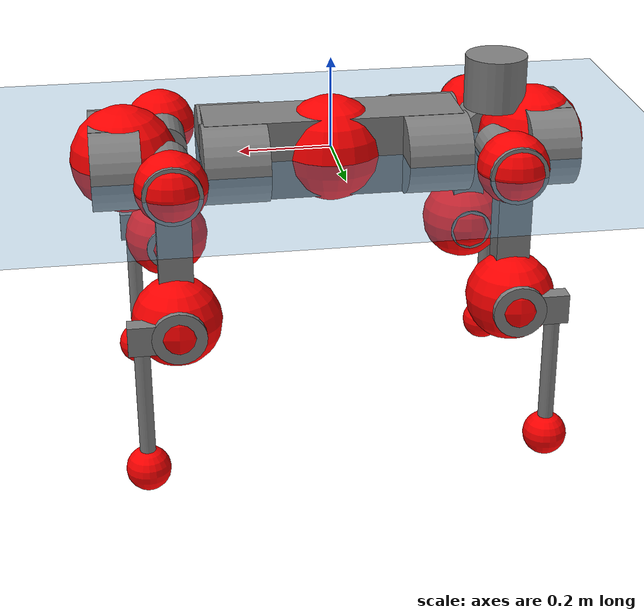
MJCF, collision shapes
<mujoco model="anymal_c">
  <compiler angle="radian" assetdir="assets" balanceinertia="true" inertiafromgeom="false"/>

  <option timestep="0.005" density="1.2" viscosity="2e-05"/>

  <size nkey="1"/>

  <visual>
    <quality shadowsize="8192"/>
    <map shadowclip="0.5"/>
  </visual>

  <default>
    <default class="/">
      <material specular="0" shininess="0.25"/>
      <geom contype="0" conaffinity="0" group="1" solref="-1000 -80"/>
      <site size="0.01 0.005 0.005" group="5"/>
      <general forcelimited="true" forcerange="-80 80" biastype="affine" gainprm="80" biasprm="0 -80 -2"/>
      <default class="anymal_c">
        <joint armature="0.01" damping="0.01" frictionloss="0.1"/>
        <default class="visual">
          <geom type="mesh" group="2"/>
          <default class="visual_zflip"/>
        </default>
        <default class="collision">
          <geom type="cylinder" group="3"/>
          <default class="foot">
            <geom size="0.03 0 0" type="sphere" condim="6" priority="1" friction="0.8 0.02 0.01" solimp="0.015 1 0.03"/>
          </default>
        </default>
      </default>
      <default class="reward_collision_sphere">
        <geom group="5" rgba="1 0 0 1"/>
      </default>
    </default>
  </default>

  <asset>
    <texture type="skybox" colorspace="auto" name="//unnamed_texture_0" builtin="gradient" rgb1="0.95 0.95 0.95" rgb2="0.95 0.95 0.95" width="100" height="600"/>
    <texture type="2d" colorspace="auto" name="texplane" builtin="checker" rgb1="0.345 0.575 0.748" rgb2="0.345 0.575 0.748" markrgb="1 1 1" width="512" height="512"/>
    <texture type="2d" colorspace="linear" name="base" file="base.png"/>
    <texture type="2d" colorspace="linear" name="top_shell" file="top_shell.png"/>
    <texture type="2d" colorspace="linear" name="bottom_shell" file="bottom_shell.png"/>
    <texture type="2d" colorspace="linear" name="remote" file="remote.png"/>
    <texture type="2d" colorspace="linear" name="hatch" file="hatch.png"/>
    <texture type="2d" colorspace="linear" name="handle" file="handle.png"/>
    <texture type="2d" colorspace="linear" name="face" file="face.png"/>
    <texture type="2d" colorspace="linear" name="battery" file="battery.png"/>
    <texture type="2d" colorspace="linear" name="lidar_cage" file="lidar_cage.png"/>
    <texture type="2d" colorspace="linear" name="depth_camera" file="depth_camera.png"/>
    <texture type="2d" colorspace="linear" name="wide_angle_camera" file="wide_angle_camera.png"/>
    <texture type="2d" colorspace="linear" name="lidar" file="lidar.png"/>
    <texture type="2d" colorspace="linear" name="drive" file="drive.png"/>
    <texture type="2d" colorspace="linear" name="hip_l" file="hip_l.png"/>
    <texture type="2d" colorspace="linear" name="shank_l" file="shank_l.png"/>
    <texture type="2d" colorspace="linear" name="foot" file="foot.png"/>
    <texture type="2d" colorspace="linear" name="thigh" file="thigh.png"/>
    <texture type="2d" colorspace="linear" name="shank_r" file="shank_r.png"/>
    <texture type="2d" colorspace="linear" name="hip_r" file="hip_r.png"/>
    <material name="MatPlane" class="/" texture="texplane" texuniform="true" texrepeat="2 2" specular="0.9" shininess="0.5"/>
    <material name="black_plastic" class="/" rgba="0.007 0.007 0.007 1"/>
    <material name="green" class="/" rgba="0.052 0.178 0.033 1"/>
    <material name="red" class="/" rgba="0.178 0.006 0.005 1"/>
    <material name="yellow" class="/" rgba="0.178 0.119 0.006 1"/>
    <material name="lwl" class="/" rgba="0.8 0.8 0.8 1"/>
    <material name="base" class="/" texture="base"/>
    <material name="top_shell" class="/" texture="top_shell"/>
    <material name="bottom_shell" class="/" texture="bottom_shell"/>
    <material name="hip_l" class="/" texture="hip_l"/>
    <material name="thigh" class="/" texture="thigh"/>
    <material name="shank_l" class="/" texture="shank_l"/>
    <material name="foot" class="/" texture="foot"/>
    <material name="hip_r" class="/" texture="hip_r"/>
    <material name="shank" class="/" texture="shank_r"/>
    <material name="hatch" class="/" texture="hatch"/>
    <material name="remote" class="/" texture="remote"/>
    <material name="handle" class="/" texture="handle"/>
    <material name="face" class="/" texture="face"/>
    <material name="depth_camera" class="/" texture="depth_camera"/>
    <material name="wide_angle_camera" class="/" texture="wide_angle_camera"/>
    <material name="battery" class="/" texture="battery"/>
    <material name="lidar_cage" class="/" texture="lidar_cage"/>
    <material name="lidar" class="/" texture="lidar"/>
    <material name="drive" class="/" texture="drive"/>
    <mesh name="base_0" class="/" file="base_0.obj"/>
    <mesh name="base_1" class="/" file="base_1.obj"/>
    <mesh name="base_2" class="/" file="base_2.obj"/>
    <mesh name="base_3" class="/" file="base_3.obj"/>
    <mesh name="base_4" class="/" file="base_4.obj"/>
    <mesh name="base_5" class="/" file="base_5.obj"/>
    <mesh name="top_shell" class="/" file="top_shell.obj"/>
    <mesh name="bottom_shell" class="/" file="bottom_shell.obj"/>
    <mesh name="remote" class="/" file="remote.obj"/>
    <mesh name="handle" class="/" file="handle.obj"/>
    <mesh name="face" class="/" file="face.obj"/>
    <mesh name="wide_angle_camera" class="/" file="wide_angle_camera.obj"/>
    <mesh name="depth_camera" class="/" file="depth_camera.obj"/>
    <mesh name="battery" class="/" file="battery.obj"/>
    <mesh name="lidar_cage" class="/" file="lidar_cage.obj"/>
    <mesh name="lidar" class="/" file="lidar.obj"/>
    <mesh name="drive" class="/" file="drive.obj"/>
    <mesh name="hip_l" class="/" file="hip_l.obj"/>
    <mesh name="thigh" class="/" file="thigh.obj"/>
    <mesh name="shank_l" class="/" file="shank_l.obj"/>
    <mesh name="foot" class="/" file="foot.obj"/>
    <mesh name="hip_r" class="/" file="hip_r.obj"/>
    <mesh name="hatch" class="/" file="hatch.obj"/>
    <mesh name="shank_r" class="/" file="shank_r.obj"/>
  </asset>

  <worldbody>
    <geom name="floor" class="/" size="100 100 0.125" type="plane" group="0" material="MatPlane"/>
    <light name="toplight_shadow" class="/" pos="0 0 5" dir="0.0990148 0.0990148 -0.990148" type="directional" ambient="0.04 0.04 0.04" diffuse="0.55 0.55 0.55" specular="0.12 0.12 0.12"/>
    <light name="toplight_fill" class="/" pos="0 0 5" dir="0.0990148 0.0990148 -0.990148" type="directional" castshadow="false" ambient="0.04 0.04 0.04" diffuse="0.3 0.3 0.3" specular="0.08 0.08 0.08"/>
    <body name="trunk" childclass="anymal_c" pos="0.000433339 -0.000225174 -0.00108568" quat="1 1.11429e-05 -2.63414e-06 0.000108674">
      <inertial pos="0.000591241 -0.00239369 0.0482177" quat="0.501354 0.498385 0.496842 0.503393" mass="16.5871" diaginertia="0.612752 0.344269 0.221872"/>
      <joint name="//unnamed_joint_0" type="free" armature="0" damping="0" frictionloss="0"/>
      <geom name="//unnamed_geom_1" class="visual" material="green" mesh="base_0"/>
      <geom name="//unnamed_geom_2" class="visual" material="yellow" mesh="base_1"/>
      <geom name="//unnamed_geom_3" class="visual" material="red" mesh="base_2"/>
      <geom name="//unnamed_geom_4" class="visual" material="black_plastic" mesh="base_3"/>
      <geom name="//unnamed_geom_5" class="visual" material="lwl" mesh="base_4"/>
      <geom name="//unnamed_geom_6" class="visual" material="base" mesh="base_5"/>
      <geom name="trunk_1" class="collision" size="0.278059 0.0671176 0.0862941" type="box"/>
      <geom name="trunk_2" class="collision" size="0.0862941 0.0695147" pos="0.215614 0.061969 0" quat="0.707107 0 0.707107 0"/>
      <geom name="trunk_3" class="collision" size="0.0862941 0.0695147" pos="-0.215614 0.061969 0" quat="0.707107 0 0.707107 0"/>
      <geom name="trunk_4" class="collision" size="0.0862941 0.0695147" pos="0.215614 -0.061969 0" quat="0.707107 0 0.707107 0"/>
      <geom name="trunk_5" class="collision" size="0.0862941 0.0695147" pos="-0.215614 -0.061969 0" quat="0.707107 0 0.707107 0"/>
      <geom name="//unnamed_geom_12" class="visual" material="top_shell" mesh="top_shell"/>
      <geom name="//unnamed_geom_13" class="visual" material="bottom_shell" mesh="bottom_shell"/>
      <geom name="//unnamed_geom_14" class="visual" material="remote" mesh="remote"/>
      <geom name="//unnamed_geom_15" class="visual" material="handle" mesh="handle"/>
      <geom name="//unnamed_geom_16" class="visual" pos="0.410905 0 0" quat="1 0 0 0" material="face" mesh="face"/>
      <geom name="trunk_6" class="collision" size="0.0527353 0.0671176 0.0862941" pos="0.465428 0 0" type="box"/>
      <geom name="//unnamed_geom_18" class="collision" size="0.0862941 0.0527353" pos="0.465428 0.061969 0" quat="0.707107 0 0.707107 0"/>
      <geom name="//unnamed_geom_19" class="collision" size="0.0862941 0.0527353" pos="0.465428 -0.061969 0" quat="0.707107 0 0.707107 0"/>
      <geom name="//unnamed_geom_20" class="visual" pos="0.457647 0 -0.0292612" quat="0.965926 0 0.258819 0" material="depth_camera" mesh="depth_camera"/>
      <geom name="//unnamed_geom_21" class="visual" pos="0.508551 0 0.0149681" material="wide_angle_camera" mesh="wide_angle_camera"/>
      <geom name="//unnamed_geom_22" class="visual_zflip" pos="-0.410905 0 0" quat="0 0 0 1" material="face" mesh="face"/>
      <geom name="trunk_7" class="collision" size="0.0527353 0.0671176 0.0862941" pos="-0.465428 0 0" quat="0 0 0 1" type="box"/>
      <geom name="//unnamed_geom_24" class="collision" size="0.0862941 0.0527353" pos="-0.465428 -0.061969 0" quat="0 -0.707107 0 0.707107"/>
      <geom name="//unnamed_geom_25" class="collision" size="0.0862941 0.0527353" pos="-0.465428 0.061969 0" quat="0 -0.707107 0 0.707107"/>
      <geom name="//unnamed_geom_26" class="visual" pos="-0.457647 0 -0.0292612" quat="0 -0.258819 0 0.965926" material="depth_camera" mesh="depth_camera"/>
      <geom name="//unnamed_geom_27" class="visual_zflip" pos="-0.508551 0 0.0149681" quat="0 0 0 1" material="wide_angle_camera" mesh="wide_angle_camera"/>
      <geom name="//unnamed_geom_28" class="visual" material="battery" mesh="battery"/>
      <geom name="//unnamed_geom_29" class="visual" pos="0 0.0662965 0.0289813" quat="0.683013 -0.183013 0.183013 0.683013" material="depth_camera" mesh="depth_camera"/>
      <geom name="//unnamed_geom_30" class="visual" pos="0 -0.0662965 0.0289813" quat="0.683013 0.183013 0.183013 -0.683013" material="depth_camera" mesh="depth_camera"/>
      <geom name="//unnamed_geom_31" class="visual" pos="-0.360843 0 0.0734905" quat="1 0 0 0" material="lidar_cage" mesh="lidar_cage"/>
      <geom name="trunk_8" class="collision" size="0.0671176 0.0575294" pos="-0.360843 0 0.133483"/>
      <geom name="//unnamed_geom_33" class="visual" pos="-0.360843 -4.16667e-05 0.142182" quat="0.707107 0 0 -0.707107" material="lidar" mesh="lidar"/>
      <geom name="//unnamed_geom_34" class="visual" pos="0.297299 0.0921089 -1.97687e-09" quat="0.258819 0.965926 0 0" material="drive" mesh="drive"/>
      <geom name="//unnamed_geom_35" class="visual" pos="0.297299 -0.0921089 1.97687e-09" quat="0.258819 -0.965926 0 0" material="drive" mesh="drive"/>
      <geom name="//unnamed_geom_36" class="visual" pos="-0.297299 0.0921089 1.97687e-09" quat="0 0 0.965926 -0.258819" material="drive" mesh="drive"/>
      <geom name="//unnamed_geom_37" class="visual" pos="-0.297299 -0.0921089 -1.97687e-09" quat="0 0 -0.965926 -0.258819" material="drive" mesh="drive"/>
      <geom name="//unnamed_geom_38" class="visual" pos="0.114994 0 0.0729906" quat="1 0 0 0" material="hatch" mesh="hatch"/>
      <geom name="//unnamed_geom_39" class="reward_collision_sphere" size="0.115059"/>
      <geom name="//unnamed_geom_40" class="reward_collision_sphere" size="0.115059" pos="0.446097 0 0"/>
      <geom name="//unnamed_geom_41" class="reward_collision_sphere" size="0.115059" pos="-0.446097 0 0"/>
      <site name="imu" pos="0.233729 0.00789406 0.0572095" size="0.00958823"/>
      <camera name="track" pos="0 -1.77054 0" quat="0.707107 0.707107 0 0" mode="trackcom"/>
      <camera name="ego_camera" pos="0.446097 0 -0.0399949" quat="-0.5 -0.5 0.5 0.5"/>
      <body name="LF_HIP" pos="0.297445 0.0930865 0.00114066" quat="0.258672 0.965965 3.90577e-05 2.09844e-05">
        <inertial pos="0.0584734 -0.0130163 -0.00874925" quat="-0.126206 0.70998 -0.136243 0.679293" mass="2.36551" diaginertia="0.00540593 0.00266764 0.00322719"/>
        <joint name="LF_HAA" pos="0 0 0" axis="0.999945 0.0090544 -0.00528136" range="-0.730257 0.489045" armature="0.0107922" damping="0" frictionloss="0.0986525"/>
        <geom name="//unnamed_geom_42" class="visual" pos="0 -0.00011629 1.91006e-05" quat="0.258819 -0.965926 0 0" material="hip_l" mesh="hip_l"/>
        <geom name="//unnamed_geom_43" class="visual" pos="0.0593805 -0.0705964 -0.0416065" quat="0.183013 -0.683013 0.683013 0.183013" material="drive" mesh="drive"/>
        <geom name="//unnamed_geom_44" class="collision" size="0.0479412 0.0671176" pos="0.0593805 -0.0105877 -0.00690411" quat="-0.353553 -0.612372 0.612372 -0.353553"/>
        <body name="LF_THIGH" pos="0.0598769 -0.0631218 -0.0418066" quat="0.183415 -0.683035 0.682938 0.182802">
          <inertial pos="0.0302676 -6.70819e-05 -0.24331" quat="0.992816 -0.00396174 -0.0856533 0.0834519" mass="2.74181" diaginertia="0.0283018 0.0163799 0.00423638"/>
          <joint name="LF_HFE" pos="0 0 0" axis="0.999903 0.0128678 0.00531291" range="-3.12239 3.12536" armature="0.00941651" damping="0.0149987" frictionloss="0.0854667"/>
          <geom name="//unnamed_geom_45" class="visual" pos="0.0021101 3.32503e-06 0" quat="0.707107 0 0 -0.707107" material="thigh" mesh="thigh"/>
          <geom name="//unnamed_geom_46" class="collision" size="0.0623235 0.0383529" pos="0.0396531 0 0" quat="0.5 0.5 -0.5 -0.5"/>
          <geom name="//unnamed_geom_47" class="collision" size="0.0359559 0.0287647 0.135495" pos="0.0297398 0 -0.141296" quat="0.707107 0 0 -0.707107" type="box"/>
          <geom name="//unnamed_geom_48" class="visual" pos="0.0994301 0 -0.284963" quat="1 0 0 0" material="drive" mesh="drive"/>
          <geom name="//unnamed_geom_49" class="collision" size="0.0479412 0.0671176" pos="0.0300372 0 -0.284963" quat="0.707107 0 0.707107 0"/>
          <geom name="//unnamed_geom_50" class="reward_collision_sphere" size="0.0767059" pos="0.0247832 0 0"/>
          <body name="LF_SHANK" pos="0.101438 -0.00238549 -0.287681" quat="1 0.000466805 -0.000254484 -0.000798733">
            <inertial pos="0.00620774 -0.0543194 -0.0798022" quat="0.993333 -0.113051 -0.003655 -0.0222577" mass="0.515352" diaginertia="0.00973576 0.00499775 0.00112901"/>
            <joint name="LF_KFE" pos="0 0 0" axis="0.999999 0.00144696 -0.000930554" range="-3.15927 3.12208" armature="0.00953777" damping="0" frictionloss="0.099027"/>
            <geom name="//unnamed_geom_51" class="visual" pos="0.000688059 0.00366876 0" quat="0.707107 0 0 -0.707107" material="shank_l" mesh="shank_l"/>
            <geom name="LF_kfe_act" class="collision" size="0.0575294 0.0191765" pos="0.0198265 0 0" quat="0.5 0.5 -0.5 -0.5"/>
            <geom name="//unnamed_geom_53" class="collision" size="0.0551314 0.0323603 0.0182176" pos="0.0198265 -0.0509022 0" quat="0.5 0.5 -0.5 -0.5" type="box"/>
            <geom name="//unnamed_geom_54" class="visual" pos="0.0129367 -0.0766773 -0.337927" quat="0.382683 0 0 -0.92388" material="foot" mesh="foot"/>
            <geom name="LF_calf" class="collision" size="0.0167794 0.135436" pos="0.0129368 -0.0778596 -0.168963" quat="0.707107 0 0 -0.707107"/>
            <geom name="LF_foot" class="foot" size="0.0317779" pos="0.0129368 -0.0778596 -0.315429" quat="0.707107 0 0 -0.707107"/>
            <geom name="//unnamed_geom_57" class="reward_collision_sphere" size="0.0958823" pos="-0.0495664 0 0"/>
            <geom name="//unnamed_geom_58" class="reward_collision_sphere" size="0.0479412" pos="0.0129368 -0.0778596 -0.315429"/>
            <site name="LF_foot" class="foot" pos="0.0129368 -0.0778596 -0.315429" quat="0.707107 0 0 -0.707107" size="0.00958823"/>
          </body>
        </body>
      </body>
      <body name="RF_HIP" pos="0.297362 -0.0921003 0.000890966" quat="0.258824 -0.965925 -3.28538e-05 -1.78971e-05">
        <inertial pos="0.058436 0.0135589 -0.00789021" quat="0.134384 0.678675 0.128336 0.710543" mass="2.49923" diaginertia="0.00568916 0.00270217 0.00331107"/>
        <joint name="RF_HAA" pos="0 0 0" axis="0.999996 0.0026657 0.000724734" range="-0.539401 0.716217" armature="0.00857703" damping="0.0106164" frictionloss="0.085197"/>
        <geom name="//unnamed_geom_59" class="visual" pos="0 0.000116289 1.91005e-05" quat="0.258819 0.965926 0 0" material="hip_r" mesh="hip_r"/>
        <geom name="//unnamed_geom_60" class="visual" pos="0.0593805 0.0705964 -0.0416065" quat="0.183013 0.683013 0.683013 -0.183013" material="drive" mesh="drive"/>
        <geom name="//unnamed_geom_61" class="collision" size="0.0479412 0.0671176" pos="0.0593805 0.0105877 -0.00690411" quat="-0.353553 0.612372 0.612372 0.353553"/>
        <body name="RF_THIGH" pos="0.060383 0.0667122 -0.0421259" quat="0.183046 0.682991 0.683029 -0.183001">
          <inertial pos="0.0305162 -0.000385773 -0.245748" quat="0.991473 -0.0060691 -0.0872922 0.0965651" mass="2.5729" diaginertia="0.0285375 0.0160716 0.00407911"/>
          <joint name="RF_HFE" pos="0 0 0" axis="0.999986 -7.86223e-06 0.00529819" stiffness="0.00586372" range="-3.09117 3.1582" armature="0.0097972" damping="0" frictionloss="0.108384"/>
          <geom name="//unnamed_geom_62" class="visual" pos="0.0021101 3.32503e-06 0" quat="0.707107 0 0 -0.707107" material="thigh" mesh="thigh"/>
          <geom name="//unnamed_geom_63" class="collision" size="0.0623235 0.0383529" pos="0.0396531 0 0" quat="0.5 0.5 0.5 0.5"/>
          <geom name="//unnamed_geom_64" class="collision" size="0.0359559 0.0287647 0.135495" pos="0.0297398 0 -0.141296" quat="0.707107 0 0 0.707107" type="box"/>
          <geom name="//unnamed_geom_65" class="visual" pos="0.0994301 0 -0.284963" quat="1 0 0 0" material="drive" mesh="drive"/>
          <geom name="//unnamed_geom_66" class="collision" size="0.0479412 0.0671176" pos="0.0300372 0 -0.284963" quat="0.707107 0 0.707107 0"/>
          <geom name="//unnamed_geom_67" class="reward_collision_sphere" size="0.0767059" pos="0.0247832 0 0"/>
          <body name="RF_SHANK" pos="0.100959 -0.00200153 -0.285754" quat="1 -0.00010833 -8.4632e-05 -0.000184628">
            <inertial pos="0.00594554 0.0537384 -0.0779883" quat="0.992763 0.117359 -0.00145392 0.0254298" mass="0.519588" diaginertia="0.00940524 0.00490577 0.0011244"/>
            <joint name="RF_KFE" pos="0 0 0" axis="0.999999 0.00152307 0.000512984" range="-3.13636 3.14804" armature="0.0100919" damping="0.00875184" frictionloss="0.0838127"/>
            <geom name="//unnamed_geom_68" class="visual" pos="0.000688055 -0.00366876 0" quat="0.707107 0 0 0.707107" material="shank" mesh="shank_r"/>
            <geom name="RF_kfe_act" class="collision" size="0.0575294 0.0191765" pos="0.0198265 0 0" quat="0.5 0.5 0.5 0.5"/>
            <geom name="//unnamed_geom_70" class="collision" size="0.0551314 0.0323603 0.0182176" pos="0.0198265 0.0509022 0" quat="0.5 0.5 0.5 0.5" type="box"/>
            <geom name="//unnamed_geom_71" class="visual" pos="0.012937 0.0766773 -0.337927" quat="0.382683 0 0 0.92388" material="foot" mesh="foot"/>
            <geom name="RF_calf" class="collision" size="0.0167794 0.135436" pos="0.0129368 0.0778596 -0.168963" quat="0.707107 0 0 0.707107"/>
            <geom name="RF_foot" class="foot" size="0.0268483" pos="0.0129368 0.0778596 -0.315429" quat="0.707107 0 0 0.707107"/>
            <geom name="//unnamed_geom_74" class="reward_collision_sphere" size="0.0958823" pos="-0.0495664 0 0"/>
            <geom name="//unnamed_geom_75" class="reward_collision_sphere" size="0.0479412" pos="0.0129368 0.0778596 -0.315429"/>
            <site name="RF_foot" class="foot" pos="0.0129368 0.0778596 -0.315429" quat="0.707107 0 0 0.707107" size="0.00958823"/>
          </body>
        </body>
      </body>
      <body name="LH_HIP" pos="-0.299254 0.0922259 0.000390529" quat="-4.56248e-05 -0.000333729 0.965881 -0.258987">
        <inertial pos="0.0558217 0.0155882 -0.00779477" quat="0.133789 0.678561 0.126273 0.711133" mass="2.43148" diaginertia="0.00553389 0.00269003 0.00311739"/>
        <joint name="LH_HAA" pos="0 0 0" axis="0.999994 -0.000858543 0.00335663" stiffness="0.00188768" range="-0.51218 0.671262" armature="0.00838381" damping="0.0108378" frictionloss="0.0938028"/>
        <geom name="//unnamed_geom_76" class="visual" pos="0 0.000116289 1.91005e-05" quat="-0.258819 -0.965926 0 0" material="hip_r" mesh="hip_r"/>
        <geom name="//unnamed_geom_77" class="visual" pos="0.0593805 0.0705964 -0.0416065" quat="0.183013 0.683013 0.683013 -0.183013" material="drive" mesh="drive"/>
        <geom name="//unnamed_geom_78" class="collision" size="0.0479412 0.0671176" pos="0.0593805 0.0105877 -0.00690411" quat="-0.353553 0.612372 0.612372 0.353553"/>
        <body name="LH_THIGH" pos="0.0576615 0.0617956 -0.041195" quat="0.182968 0.683091 0.682976 -0.182903">
          <inertial pos="0.030696 0.00164909 -0.245161" quat="0.99288 -0.00653917 -0.0813621 0.0867536" mass="2.7108" diaginertia="0.0290345 0.0161805 0.00413279"/>
          <joint name="LH_HFE" pos="0 0 0" axis="0.99995 0.00848679 0.00525236" range="-3.14523 3.13457" armature="0.00965826" damping="0.0109524" frictionloss="0.0913065"/>
          <geom name="//unnamed_geom_79" class="visual" pos="0.0021101 3.32503e-06 0" quat="0.707107 0 0 -0.707107" material="thigh" mesh="thigh"/>
          <geom name="//unnamed_geom_80" class="collision" size="0.0623235 0.0383529" pos="0.0396531 0 0" quat="0.5 0.5 -0.5 -0.5"/>
          <geom name="//unnamed_geom_81" class="collision" size="0.0359559 0.0287647 0.135495" pos="0.0297398 0 -0.141296" quat="0.707107 0 0 -0.707107" type="box"/>
          <geom name="//unnamed_geom_82" class="visual" pos="0.0994301 0 -0.284963" quat="1 0 0 0" material="drive" mesh="drive"/>
          <geom name="//unnamed_geom_83" class="collision" size="0.0479412 0.0671176" pos="0.0300372 0 -0.284963" quat="0.707107 0 0.707107 0"/>
          <geom name="//unnamed_geom_84" class="reward_collision_sphere" size="0.0767059" pos="0.0247832 0 0"/>
          <body name="LH_SHANK" pos="0.0988136 -3.54404e-05 -0.284783" quat="1 0.000131976 0.000153374 4.40734e-05">
            <inertial pos="0.00543491 0.0542703 -0.0804658" quat="0.992952 0.113324 0.00882311 0.0335535" mass="0.517071" diaginertia="0.00976477 0.00501244 0.00107872"/>
            <joint name="LH_KFE" pos="0 0 0" axis="0.999911 0.00296565 0.0130246" stiffness="0.00106596" range="-3.13368 3.14368" armature="0.00889783" damping="0.00858715" frictionloss="0.0997608"/>
            <geom name="//unnamed_geom_85" class="visual" pos="0.000688055 -0.00366876 0" quat="-0.707107 0 0 -0.707107" material="shank" mesh="shank_r"/>
            <geom name="LH_kfe_act" class="collision" size="0.0575294 0.0191765" pos="0.0198265 0 0" quat="0.5 0.5 -0.5 -0.5"/>
            <geom name="//unnamed_geom_87" class="collision" size="0.0551314 0.0323603 0.0182176" pos="0.0198265 0.0509022 0" quat="0.5 0.5 -0.5 -0.5" type="box"/>
            <geom name="//unnamed_geom_88" class="visual" pos="0.012937 0.0766773 -0.337927" quat="-0.382683 0 0 -0.92388" material="foot" mesh="foot"/>
            <geom name="LH_calf" class="collision" size="0.0167794 0.135436" pos="0.0129368 0.0778596 -0.168963" quat="0.707107 0 0 -0.707107"/>
            <geom name="LH_foot" class="foot" size="0.0343804" pos="0.0129368 0.0778596 -0.315429" quat="0.707107 0 0 -0.707107"/>
            <geom name="//unnamed_geom_91" class="reward_collision_sphere" size="0.0958823" pos="-0.0495664 0 0"/>
            <geom name="//unnamed_geom_92" class="reward_collision_sphere" size="0.0479412" pos="0.0129368 0.0778596 -0.315429"/>
            <site name="LH_foot" class="foot" pos="0.0129368 0.0778596 -0.315429" quat="0.707107 0 0 -0.707107" size="0.00958823"/>
          </body>
        </body>
      </body>
      <body name="RH_HIP" pos="-0.297054 -0.0950992 0.000889092" quat="-0.000641499 0.000285011 -0.965806 -0.259264">
        <inertial pos="0.0537834 -0.0134248 -0.00647855" quat="-0.127907 0.711191 -0.13031 0.678871" mass="2.46024" diaginertia="0.00559946 0.00267933 0.0031923"/>
        <joint name="RH_HAA" pos="0 0 0" axis="1 6.35047e-05 -0.000195134" range="-0.763719 0.544622" armature="0.00948082" damping="0.00526159" frictionloss="0.0955253"/>
        <geom name="//unnamed_geom_93" class="visual" pos="0 -0.00011629 1.91006e-05" quat="-0.258819 0.965926 0 0" material="hip_l" mesh="hip_l"/>
        <geom name="//unnamed_geom_94" class="visual" pos="0.0593805 -0.0705964 -0.0416065" quat="-0.183013 0.683013 -0.683013 -0.183013" material="drive" mesh="drive"/>
        <geom name="//unnamed_geom_95" class="collision" size="0.0479412 0.0671176" pos="0.0593805 -0.0105877 -0.00690411" quat="0.353553 0.612372 -0.612372 0.353553"/>
        <body name="RH_THIGH" pos="0.0598019 -0.064287 -0.040532" quat="-0.183015 0.682996 -0.683036 -0.182989">
          <inertial pos="0.0320907 0.000922381 -0.24588" quat="0.993197 -0.00550901 -0.0805896 0.0838783" mass="2.53532" diaginertia="0.027306 0.0157932 0.00400375"/>
          <joint name="RH_HFE" pos="0 0 0" axis="0.999977 0.00666133 0.000844309" range="-3.13005 3.13852" armature="0.00994349" damping="0.0123467" frictionloss="0.0949422"/>
          <geom name="//unnamed_geom_96" class="visual" pos="0.0021101 3.32503e-06 0" quat="0.707107 0 0 -0.707107" material="thigh" mesh="thigh"/>
          <geom name="//unnamed_geom_97" class="collision" size="0.0623235 0.0383529" pos="0.0396531 0 0" quat="0.5 0.5 0.5 0.5"/>
          <geom name="//unnamed_geom_98" class="collision" size="0.0359559 0.0287647 0.135495" pos="0.0297398 0 -0.141296" quat="0.707107 0 0 0.707107" type="box"/>
          <geom name="//unnamed_geom_99" class="visual" pos="0.0994301 0 -0.284963" quat="1 0 0 0" material="drive" mesh="drive"/>
          <geom name="//unnamed_geom_100" class="collision" size="0.0479412 0.0671176" pos="0.0300372 0 -0.284963" quat="0.707107 0 0.707107 0"/>
          <geom name="//unnamed_geom_101" class="reward_collision_sphere" size="0.0767059" pos="0.0247832 0 0"/>
          <body name="RH_SHANK" pos="0.0972239 0.00133634 -0.285696" quat="1 5.97856e-05 9.18844e-05 0.000167532">
            <inertial pos="0.00636172 -0.0540431 -0.0801426" quat="0.99311 -0.115158 0.0073825 -0.0204332" mass="0.522953" diaginertia="0.00977039 0.00517403 0.00113147"/>
            <joint name="RH_KFE" pos="0 0 0" axis="0.999995 -0.00282701 0.00134406" stiffness="0.000983872" range="-3.12788 3.15659" armature="0.00837042" damping="0.0022938" frictionloss="0.0957317"/>
            <geom name="//unnamed_geom_102" class="visual" pos="0.000688059 0.00366876 0" quat="0.707107 0 0 -0.707107" material="shank_l" mesh="shank_l"/>
            <geom name="RH_kfe_act" class="collision" size="0.0575294 0.0191765" pos="0.0198265 0 0" quat="0.5 0.5 0.5 0.5"/>
            <geom name="//unnamed_geom_104" class="collision" size="0.0551314 0.0323603 0.0182176" pos="0.0198265 -0.0509022 0" quat="0.5 0.5 0.5 0.5" type="box"/>
            <geom name="//unnamed_geom_105" class="visual" pos="0.0129367 -0.0766773 -0.337927" quat="0.382683 0 0 -0.92388" material="foot" mesh="foot"/>
            <geom name="RH_calf" class="collision" size="0.0167794 0.135436" pos="0.0129368 -0.0778596 -0.168963" quat="0.707107 0 0 0.707107"/>
            <geom name="RH_foot" class="foot" size="0.0245356" pos="0.0129368 -0.0778596 -0.315429" quat="0.707107 0 0 0.707107"/>
            <geom name="//unnamed_geom_108" class="reward_collision_sphere" size="0.0958823" pos="-0.0495664 0 0"/>
            <geom name="//unnamed_geom_109" class="reward_collision_sphere" size="0.0479412" pos="0.0129368 -0.0778596 -0.315429"/>
            <site name="RH_foot" class="foot" pos="0.0129368 -0.0778596 -0.315429" quat="0.707107 0 0 0.707107" size="0.00958823"/>
          </body>
        </body>
      </body>
    </body>
  </worldbody>

  <contact>
    <pair class="/" geom1="floor" geom2="LF_foot" name="//unnamed_contact_0"/>
    <pair class="/" geom1="floor" geom2="RF_foot" name="//unnamed_contact_1"/>
    <pair class="/" geom1="floor" geom2="LH_foot" name="//unnamed_contact_2"/>
    <pair class="/" geom1="floor" geom2="RH_foot" name="//unnamed_contact_3"/>
  </contact>

  <actuator>
    <general name="LF_HAA" class="/" joint="LF_HAA" forcerange="-77.9975 77.9975" gainprm="82.6262" biasprm="0 -82.6262 -1.87533"/>
    <general name="LF_HFE" class="/" joint="LF_HFE" forcerange="-76.694 76.694" gainprm="82.6262" biasprm="0 -82.6262 -1.87533"/>
    <general name="LF_KFE" class="/" joint="LF_KFE" forcerange="-78.2748 78.2748" gainprm="82.6262" biasprm="0 -82.6262 -1.87533"/>
    <general name="RF_HAA" class="/" joint="RF_HAA" forcerange="-75.9163 75.9163" gainprm="82.6262" biasprm="0 -82.6262 -1.87533"/>
    <general name="RF_HFE" class="/" joint="RF_HFE" forcerange="-77.6364 77.6364" gainprm="82.6262" biasprm="0 -82.6262 -1.87533"/>
    <general name="RF_KFE" class="/" joint="RF_KFE" forcerange="-71.2238 71.2238" gainprm="82.6262" biasprm="0 -82.6262 -1.87533"/>
    <general name="LH_HAA" class="/" joint="LH_HAA" forcerange="-77.2819 77.2819" gainprm="82.6262" biasprm="0 -82.6262 -1.87533"/>
    <general name="LH_HFE" class="/" joint="LH_HFE" forcerange="-71.374 71.374" gainprm="82.6262" biasprm="0 -82.6262 -1.87533"/>
    <general name="LH_KFE" class="/" joint="LH_KFE" forcerange="-77.8778 77.8778" gainprm="82.6262" biasprm="0 -82.6262 -1.87533"/>
    <general name="RH_HAA" class="/" joint="RH_HAA" forcerange="-80.0103 80.0103" gainprm="82.6262" biasprm="0 -82.6262 -1.87533"/>
    <general name="RH_HFE" class="/" joint="RH_HFE" forcerange="-70.1411 70.1411" gainprm="82.6262" biasprm="0 -82.6262 -1.87533"/>
    <general name="RH_KFE" class="/" joint="RH_KFE" forcerange="-82.4519 82.4519" gainprm="82.6262" biasprm="0 -82.6262 -1.87533"/>
  </actuator>

  <sensor>
    <gyro site="imu" name="imu_angular_velocity"/>
    <velocimeter site="imu" name="imu_linear_velocity"/>
    <framelinvel objtype="site" objname="LF_foot" name="LF_foot_global_linear_velocity"/>
    <framelinvel objtype="site" objname="RF_foot" name="RF_foot_global_linear_velocity"/>
    <framelinvel objtype="site" objname="LH_foot" name="LH_foot_global_linear_velocity"/>
    <framelinvel objtype="site" objname="RH_foot" name="RH_foot_global_linear_velocity"/>
  </sensor>

  <keyframe>
    <key name="home" qpos="0 0 0.55 1 0 0 0 0 0.4 -0.8 0 -0.4 0.8 0 -0.4 0.8 0 0.4 -0.8"/>
  </keyframe>
</mujoco>
